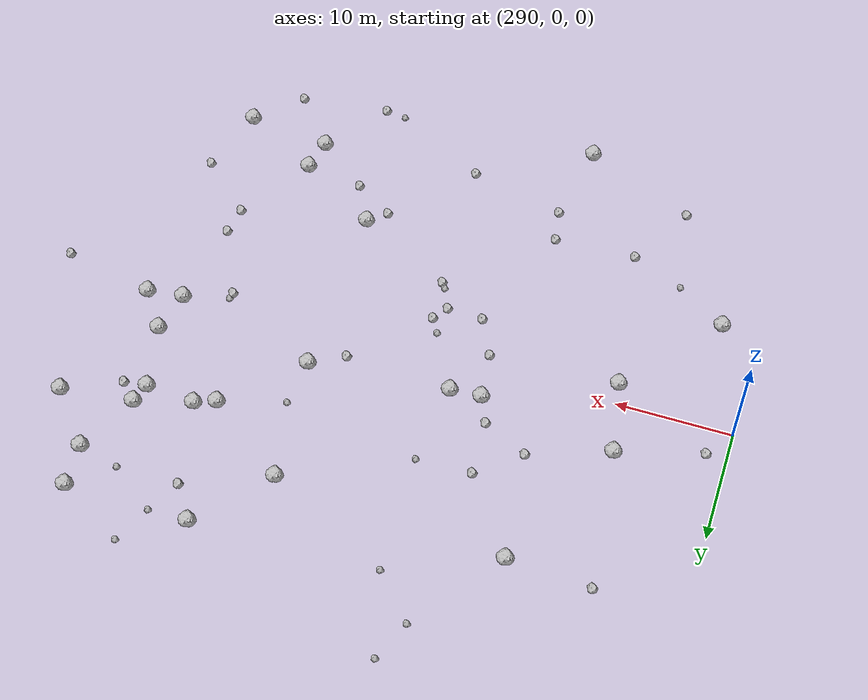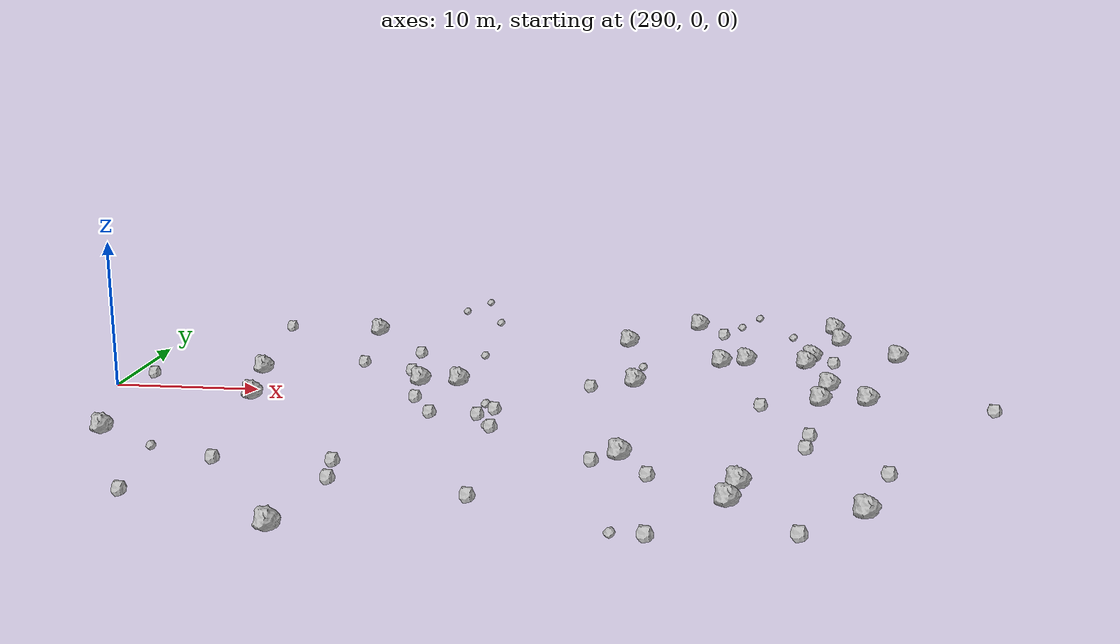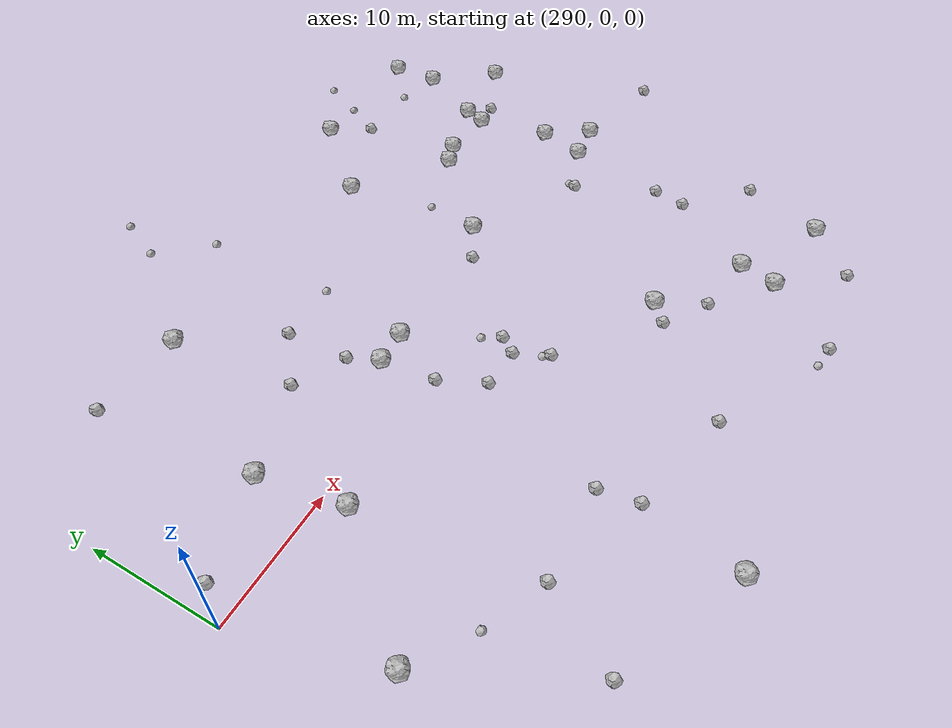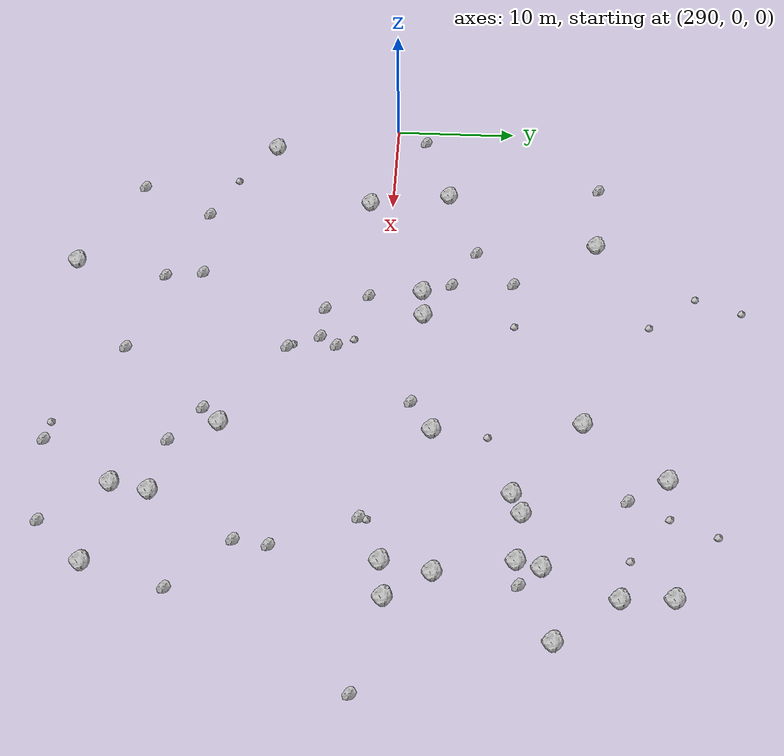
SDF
<sdf version="1.6">
 <world name="default">
  <include><uri>model://sun</uri></include>
  <model name="rock1_8_3">
   <include><uri>model://rock1</uri><pose>329.9400606327769 21.228266027152152 0.5 0 0 0</pose></include>
  </model>
  <model name="rock1_8_4">
   <include><uri>model://rock1</uri><pose>313.49249124618143 3.0297134950922953 0.5 0 0 0</pose></include>
  </model>
  <model name="rock1_8_5">
   <include><uri>model://rock1</uri><pose>324.647892964185 15.239799432228729 0.5 0 0 0</pose></include>
  </model>
  <model name="rock1_8_6">
   <include><uri>model://rock1</uri><pose>293.21118476504716 -10.244689741642166 0.5 0 0 0</pose></include>
  </model>
  <model name="rock1_8_7">
   <include><uri>model://rock1</uri><pose>308.367804035185 -24.996321062573326 0.5 0 0 0</pose></include>
  </model>
  <model name="rock1_8_8">
   <include><uri>model://rock1</uri><pose>340.6065495277047 21.141469592209297 0.5 0 0 0</pose></include>
  </model>
  <model name="rock1_8_9">
   <include><uri>model://rock1</uri><pose>338.9941971704057 4.613451802960611 0.5 0 0 0</pose></include>
  </model>
  <model name="rock1_8_10">
   <include><uri>model://rock1</uri><pose>299.0102711055384 4.652279703600058 0.5 0 0 0</pose></include>
  </model>
  <model name="rock1_8_11">
   <include><uri>model://rock1</uri><pose>338.2960350596058 12.094509255951216 0.5 0 0 0</pose></include>
  </model>
  <model name="rock1_8_12">
   <include><uri>model://rock1</uri><pose>300.19273289193916 -1.8522179268013126 0.5 0 0 0</pose></include>
  </model>
  <model name="rock1_8_13">
   <include><uri>model://rock1</uri><pose>331.65331262403106 10.024408726683717 0.5 0 0 0</pose></include>
  </model>
  <model name="rock1_8_14">
   <include><uri>model://rock1</uri><pose>325.6800000875039 4.112157887752993 0.5 0 0 0</pose></include>
  </model>
  <model name="rock1_8_15">
   <include><uri>model://rock1</uri><pose>344.5575950702501 12.820165927747198 0.5 0 0 0</pose></include>
  </model>
  <model name="rock1_8_16">
   <include><uri>model://rock1</uri><pose>304.7619581402649 16.728384162946213 0.5 0 0 0</pose></include>
  </model>
  <model name="rock1_8_17">
   <include><uri>model://rock1</uri><pose>338.16575799900784 0.9543244332824656 0.5 0 0 0</pose></include>
  </model>
  <model name="rock1_8_18">
   <include><uri>model://rock1</uri><pose>325.62942155221674 -11.617419554457829 0.5 0 0 0</pose></include>
  </model>
  <model name="rock1_8_19">
   <include><uri>model://rock1</uri><pose>331.91103385120215 -18.713891849117132 0.5 0 0 0</pose></include>
  </model>
  <model name="rock1_8_20">
   <include><uri>model://rock1</uri><pose>332.5275009563875 -15.86800126369398 0.5 0 0 0</pose></include>
  </model>
  <model name="rock1_8_21">
   <include><uri>model://rock1</uri><pose>340.8166332055566 17.3973680231026 0.5 0 0 0</pose></include>
  </model>
  <model name="rock1_8_22">
   <include><uri>model://rock1</uri><pose>341.29357137986153 1.3340029036775434 0.5 0 0 0</pose></include>
  </model>
  <model name="rock1_8_23">
   <include><uri>model://rock1</uri><pose>339.2015736685357 -19.628470295813614 0.5 0 0 0</pose></include>
  </model>
  <model name="rock1_8_24">
   <include><uri>model://rock1</uri><pose>310.8026370396912 2.8567676482041193 0.5 0 0 0</pose></include>
  </model>
  <model name="rock1_8_25">
   <include><uri>model://rock1</uri><pose>333.46678374233386 10.71669548976169 0.5 0 0 0</pose></include>
  </model>
  <model name="rock1_8_26">
   <include><uri>model://rock1</uri><pose>337.7610701992724 10.34965207848711 0.5 0 0 0</pose></include>
  </model>
  <model name="rock2_8_0">
   <include><uri>model://rock2</uri><pose>336.5871168591395 -9.32719128416867 0.3 0 0 0</pose></include>
  </model>
  <model name="rock2_8_1">
   <include><uri>model://rock2</uri><pose>309.6128628263775 -17.68670638168922 0.3 0 0 0</pose></include>
  </model>
  <model name="rock2_8_2">
   <include><uri>model://rock2</uri><pose>305.8413567944598 7.092686115704865 0.3 0 0 0</pose></include>
  </model>
  <model name="rock2_8_3">
   <include><uri>model://rock2</uri><pose>291.72701291825825 2.5156917109901187 0.3 0 0 0</pose></include>
  </model>
  <model name="rock2_8_4">
   <include><uri>model://rock2</uri><pose>298.7380477577405 -20.840153842932157 0.3 0 0 0</pose></include>
  </model>
  <model name="rock2_8_5">
   <include><uri>model://rock2</uri><pose>309.1248736372789 -14.72937683603013 0.3 0 0 0</pose></include>
  </model>
  <model name="rock2_8_6">
   <include><uri>model://rock2</uri><pose>327.75232773484123 -24.2093978113776 0.3 0 0 0</pose></include>
  </model>
  <model name="rock2_8_7">
   <include><uri>model://rock2</uri><pose>349.13674500342506 -0.349162090501256 0.3 0 0 0</pose></include>
  </model>
  <model name="rock2_8_8">
   <include><uri>model://rock2</uri><pose>317.88779573733933 -19.65108499776265 0.3 0 0 0</pose></include>
  </model>
  <model name="rock2_8_9">
   <include><uri>model://rock2</uri><pose>316.0377395833508 -4.798911361349791 0.3 0 0 0</pose></include>
  </model>
  <model name="rock2_8_10">
   <include><uri>model://rock2</uri><pose>317.2645762810426 -7.272527223424255 0.3 0 0 0</pose></include>
  </model>
  <model name="rock2_8_11">
   <include><uri>model://rock2</uri><pose>324.0545114856542 -12.956303727928393 0.3 0 0 0</pose></include>
  </model>
  <model name="rock2_8_12">
   <include><uri>model://rock2</uri><pose>334.1594096049132 -0.6905963327074858 0.3 0 0 0</pose></include>
  </model>
  <model name="rock2_8_13">
   <include><uri>model://rock2</uri><pose>309.4419925892814 10.087655484686458 0.3 0 0 0</pose></include>
  </model>
  <model name="rock2_8_14">
   <include><uri>model://rock2</uri><pose>302.00657245479977 -15.014237891110003 0.3 0 0 0</pose></include>
  </model>
  <model name="rock2_8_15">
   <include><uri>model://rock2</uri><pose>309.7305109153813 5.194407364134939 0.3 0 0 0</pose></include>
  </model>
  <model name="rock2_8_16">
   <include><uri>model://rock2</uri><pose>327.4157756339168 -15.139569946335891 0.3 0 0 0</pose></include>
  </model>
  <model name="rock2_8_17">
   <include><uri>model://rock2</uri><pose>336.9664682560683 -6.816853938506423 0.3 0 0 0</pose></include>
  </model>
  <model name="rock2_8_18">
   <include><uri>model://rock2</uri><pose>339.7240353129772 10.565472039007247 0.3 0 0 0</pose></include>
  </model>
  <model name="rock2_8_19">
   <include><uri>model://rock2</uri><pose>316.9634708723595 -3.4902451307519264 0.3 0 0 0</pose></include>
  </model>
  <model name="rock2_8_20">
   <include><uri>model://rock2</uri><pose>312.8839038313786 -4.659718154214875 0.3 0 0 0</pose></include>
  </model>
  <model name="rock2_8_21">
   <include><uri>model://rock2</uri><pose>297.5288950962086 17.155227120320554 0.3 0 0 0</pose></include>
  </model>
  <model name="rock2_8_22">
   <include><uri>model://rock2</uri><pose>311.2667201325823 -1.316160421581074 0.3 0 0 0</pose></include>
  </model>
  <model name="rock2_8_23">
   <include><uri>model://rock2</uri><pose>341.01793938254974 -13.543472082763888 0.3 0 0 0</pose></include>
  </model>
  <model name="rock2_8_24">
   <include><uri>model://rock2</uri><pose>322.74006806317846 2.472220514624759 0.3 0 0 0</pose></include>
  </model>
  <model name="rock2_8_25">
   <include><uri>model://rock2</uri><pose>335.47942643645683 -23.267368461921016 0.3 0 0 0</pose></include>
  </model>
  <model name="rock2_8_26">
   <include><uri>model://rock2</uri><pose>331.84646493427203 18.304064228757106 0.3 0 0 0</pose></include>
  </model>
  <model name="rock3_8_0">
   <include><uri>model://rock3</uri><pose>311.91108731621694 27.922457489189448 0.2 0 0 0</pose></include>
  </model>
  <model name="rock3_8_1">
   <include><uri>model://rock3</uri><pose>326.0147364012314 8.249340317255566 0.2 0 0 0</pose></include>
  </model>
  <model name="rock3_8_2">
   <include><uri>model://rock3</uri><pose>316.874216740191 -6.8253612742075305 0.2 0 0 0</pose></include>
  </model>
  <model name="rock3_8_3">
   <include><uri>model://rock3</uri><pose>325.9167650007227 -24.016903120106885 0.2 0 0 0</pose></include>
  </model>
  <model name="rock3_8_4">
   <include><uri>model://rock3</uri><pose>314.1927026734478 10.16339193281798 0.2 0 0 0</pose></include>
  </model>
  <model name="rock3_8_5">
   <include><uri>model://rock3</uri><pose>297.4622288259567 -13.104393111332474 0.2 0 0 0</pose></include>
  </model>
  <model name="rock3_8_6">
   <include><uri>model://rock3</uri><pose>316.14604206408757 -2.1920135624636785 0.2 0 0 0</pose></include>
  </model>
  <model name="rock3_8_7">
   <include><uri>model://rock3</uri><pose>337.442832661041 10.362323476303345 0.2 0 0 0</pose></include>
  </model>
  <model name="rock3_8_8">
   <include><uri>model://rock3</uri><pose>334.25366966493567 -0.1641370083249818 0.2 0 0 0</pose></include>
  </model>
  <model name="rock3_8_9">
   <include><uri>model://rock3</uri><pose>333.2976838997819 21.18846736782912 0.2 0 0 0</pose></include>
  </model>
  <model name="rock3_8_10">
   <include><uri>model://rock3</uri><pose>334.7912787895651 24.488044726030815 0.2 0 0 0</pose></include>
  </model>
  <model name="rock3_8_11">
   <include><uri>model://rock3</uri><pose>313.84948238151105 20.621464995971564 0.2 0 0 0</pose></include>
  </model>
  <model name="rock3_8_12">
   <include><uri>model://rock3</uri><pose>337.20038507209546 18.268405754096584 0.2 0 0 0</pose></include>
  </model>
  <model name="rock3_8_13">
   <include><uri>model://rock3</uri><pose>310.4585274653796 24.39907287608461 0.2 0 0 0</pose></include>
  </model>
 </world>
</sdf>
